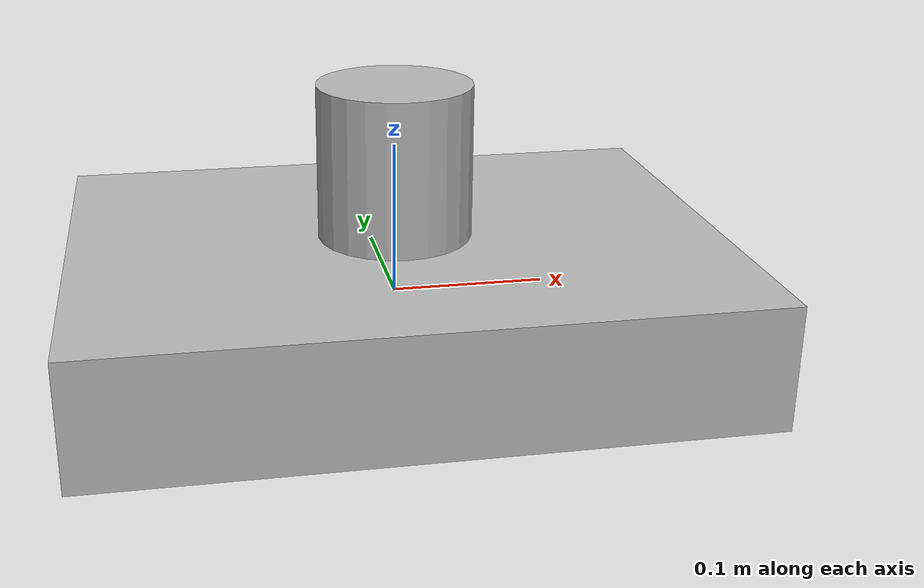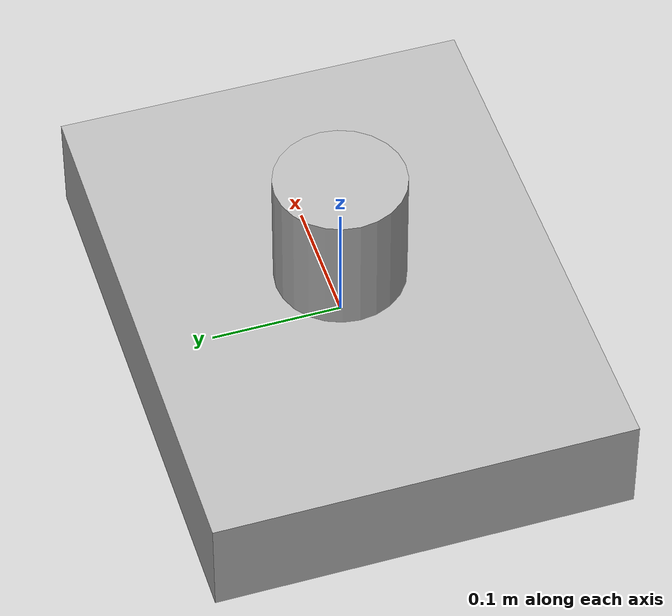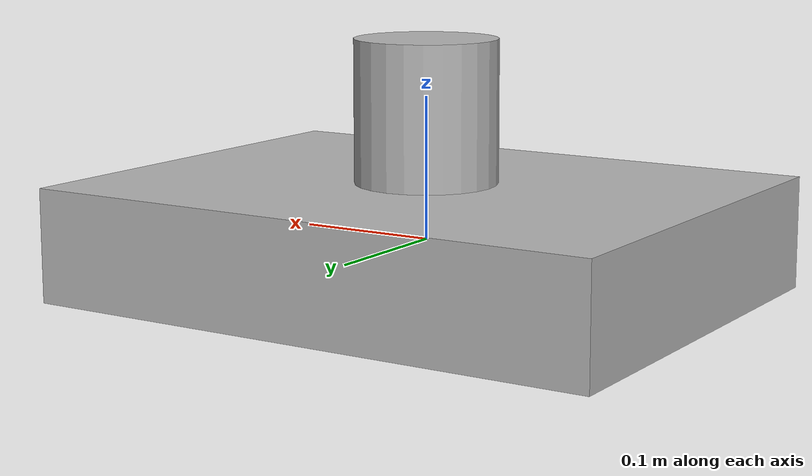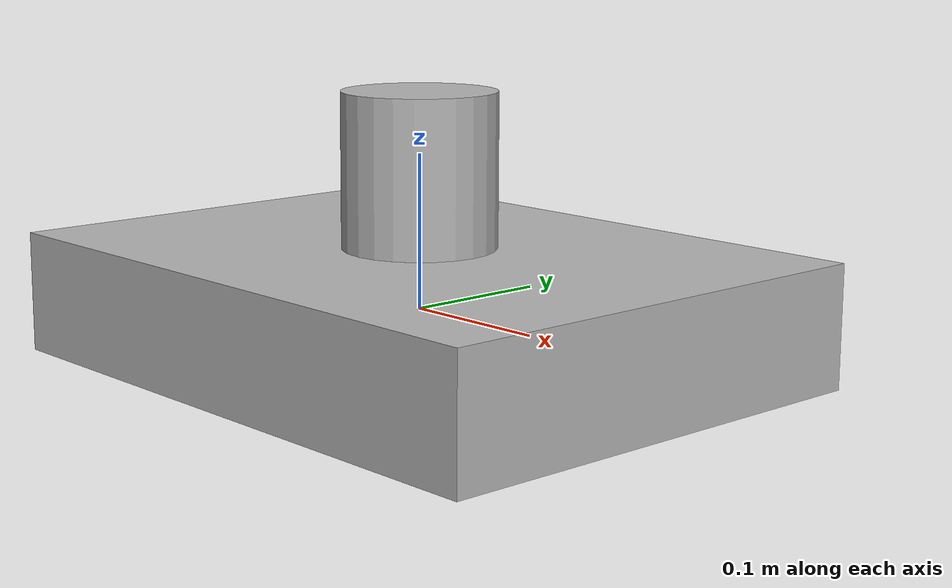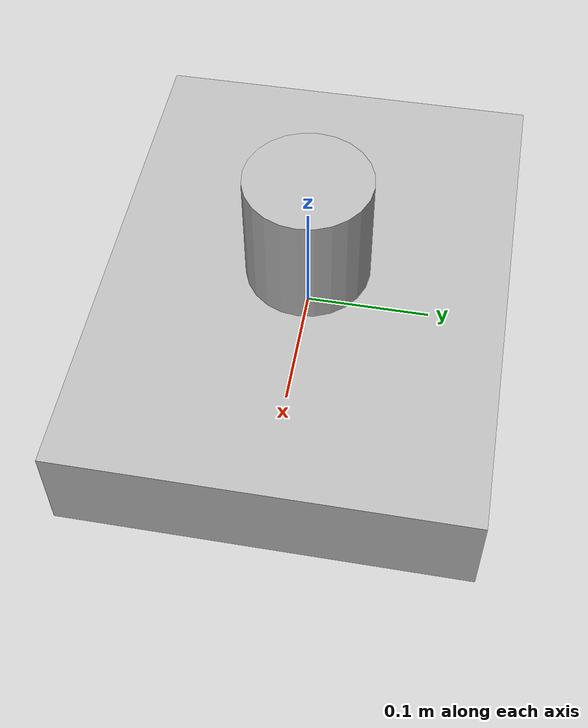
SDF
<sdf version='1.7'>
  <model name='andresito'>
    <link name='base_link'>
      <inertial>
        <pose>0.05115 0.0875 0.0145 0 -0 0</pose>
        <mass>0.072</mass>
        <inertia>
          <ixx>0.00388124</ixx>
          <ixy>-5.42101e-20</ixy>
          <ixz>0</ixz>
          <iyy>0.00049894</iyy>
          <iyz>0</iyz>
          <izz>0.00387926</izz>
        </inertia>
      </inertial>
      <collision name='base_link_collision'>
        <pose>0 0 0 0 -0 0</pose>
        <geometry>
          <box>
            <size>0.42 0.32 0.08</size>
          </box>
        </geometry>
      </collision>
      <collision name='base_link_fixed_joint_lump__camera_link_collision_1'>
        <pose>0.0427 0.04 0.0145 0 -0 0</pose>
        <geometry>
          <box>
            <size>0.026 0.124 0.029</size>
          </box>
        </geometry>
      </collision>
      <visual name='base_link_visual'>
        <pose>0 0 0 0 -0 0</pose>
        <geometry>
          <box>
            <size>0.42 0.32 0.08</size>
          </box>
        </geometry>
      </visual>
      <visual name='base_link_fixed_joint_lump__laser_visual_1'>
        <pose>0 0 0.08 0 -0 3.14159</pose>
        <geometry>
          <cylinder>
            <length>0.12</length>
            <radius>0.05</radius>
          </cylinder>
        </geometry>
      </visual>
      <visual name='base_link_fixed_joint_lump__camera_link_visual_2'>
        <pose>0.0558 0.04 0.0145 1.5708 -0 1.5708</pose>
        <geometry>
          <mesh>
            <scale>0.001 0.001 0.001</scale>
            <uri>file:///opt/ros/humble/share/realsense2_description/meshes/d455.stl</uri>
          </mesh>
        </geometry>
      </visual>
    </link>
  </model>
</sdf>
